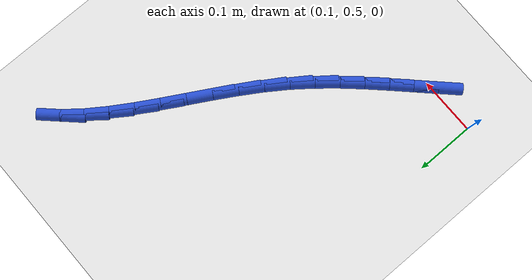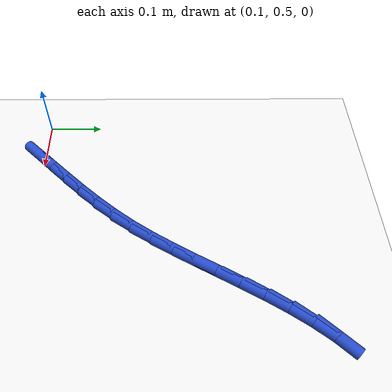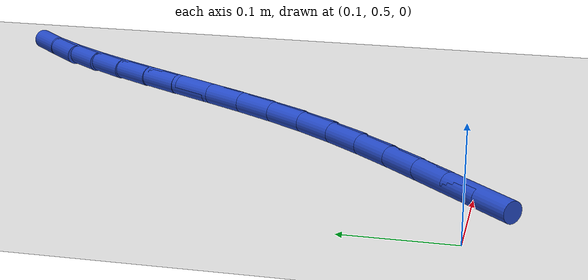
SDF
<sdf version="1.6">
 <world name="default">
  <model name="ground_plane">
   <static>1</static>
   <link name="link">
    <collision name="collision">
     <geometry><plane><normal>0 0 1</normal><size>100 100</size></plane></geometry>
     <surface><friction><ode><mu>100</mu><mu2>50</mu2></ode></friction></surface>
    </collision>
    <visual name="visual">
     <cast_shadows>0</cast_shadows>
     <geometry><plane><normal>0 0 1</normal><size>100 100</size></plane></geometry>
     <material>
      <script><uri>file://media/materials/scripts/gazebo.material</uri><name>Gazebo/WhiteGlow</name></script>
     </material>
    </visual>
   </link>
  </model>
  <model name="line">
   <link name="link_14">
    <pose>0.1823022736909687 0.4934664710613719 0.01 0 1.57 0.800476850619655</pose>
    <collision name="collision">
     <geometry><cylinder><radius>0.01</radius><length>0.08</length></cylinder></geometry>
    </collision>
    <visual name="visual">
     <material>
      <script><name>Gazebo/Blue</name><uri>file://media/materials/scripts/gazebo.material</uri></script>
     </material>
     <geometry><cylinder><radius>0.01</radius><length>0.08</length></cylinder></geometry>
    </visual>
   </link>
   <link name="link_15">
    <pose>0.20979353229625253 0.521799551211867 0.01 0 1.57 0.7988150344108635</pose>
    <collision name="collision">
     <geometry><cylinder><radius>0.01</radius><length>0.08</length></cylinder></geometry>
    </collision>
    <visual name="visual">
     <material>
      <script><name>Gazebo/Blue</name><uri>file://media/materials/scripts/gazebo.material</uri></script>
     </material>
     <geometry><cylinder><radius>0.01</radius><length>0.08</length></cylinder></geometry>
    </visual>
   </link>
   <link name="link_16">
    <pose>0.23766250720871962 0.5504265710855382 0.01 0 1.57 0.8100570907721972</pose>
    <collision name="collision">
     <geometry><cylinder><radius>0.01</radius><length>0.08</length></cylinder></geometry>
    </collision>
    <visual name="visual">
     <material>
      <script><name>Gazebo/Blue</name><uri>file://media/materials/scripts/gazebo.material</uri></script>
     </material>
     <geometry><cylinder><radius>0.01</radius><length>0.08</length></cylinder></geometry>
    </visual>
   </link>
   <link name="link_17">
    <pose>0.2655060036113212 0.5796782589242607 0.01 0 1.57 0.8338186093596895</pose>
    <collision name="collision">
     <geometry><cylinder><radius>0.01</radius><length>0.08</length></cylinder></geometry>
    </collision>
    <visual name="visual">
     <material>
      <script><name>Gazebo/Blue</name><uri>file://media/materials/scripts/gazebo.material</uri></script>
     </material>
     <geometry><cylinder><radius>0.01</radius><length>0.08</length></cylinder></geometry>
    </visual>
   </link>
   <link name="link_18">
    <pose>0.29292082668700836 0.6098853429699098 0.01 0 1.57 0.869746077668454</pose>
    <collision name="collision">
     <geometry><cylinder><radius>0.01</radius><length>0.08</length></cylinder></geometry>
    </collision>
    <visual name="visual">
     <material>
      <script><name>Gazebo/Blue</name><uri>file://media/materials/scripts/gazebo.material</uri></script>
     </material>
     <geometry><cylinder><radius>0.01</radius><length>0.08</length></cylinder></geometry>
    </visual>
   </link>
   <link name="link_19">
    <pose>0.31950378161873233 0.6413785514643608 0.01 0 1.57 0.9174079820426917</pose>
    <collision name="collision">
     <geometry><cylinder><radius>0.01</radius><length>0.08</length></cylinder></geometry>
    </collision>
    <visual name="visual">
     <material>
      <script><name>Gazebo/Blue</name><uri>file://media/materials/scripts/gazebo.material</uri></script>
     </material>
     <geometry><cylinder><radius>0.01</radius><length>0.08</length></cylinder></geometry>
    </visual>
   </link>
   <link name="link_20">
    <pose>0.3448516752477059 0.6744886106825727 0.01 0 1.57 0.9713655664704544</pose>
    <collision name="collision">
     <geometry><cylinder><radius>0.01</radius><length>0.08</length></cylinder></geometry>
    </collision>
    <visual name="visual">
     <material>
      <script><name>Gazebo/Blue</name><uri>file://media/materials/scripts/gazebo.material</uri></script>
     </material>
     <geometry><cylinder><radius>0.01</radius><length>0.08</length></cylinder></geometry>
    </visual>
   </link>
   <link name="link_21">
    <pose>0.36869680018552614 0.7093855429359073 0.01 0 1.57 1.0137798763475485</pose>
    <collision name="collision">
     <geometry><cylinder><radius>0.01</radius><length>0.08</length></cylinder></geometry>
    </collision>
    <visual name="visual">
     <material>
      <script><name>Gazebo/Blue</name><uri>file://media/materials/scripts/gazebo.material</uri></script>
     </material>
     <geometry><cylinder><radius>0.01</radius><length>0.08</length></cylinder></geometry>
    </visual>
   </link>
   <link name="link_22">
    <pose>0.39127638939382337 0.745640444793188 0.01 0 1.57 1.0415218999347804</pose>
    <collision name="collision">
     <geometry><cylinder><radius>0.01</radius><length>0.08</length></cylinder></geometry>
    </collision>
    <visual name="visual">
     <material>
      <script><name>Gazebo/Blue</name><uri>file://media/materials/scripts/gazebo.material</uri></script>
     </material>
     <geometry><cylinder><radius>0.01</radius><length>0.08</length></cylinder></geometry>
    </visual>
   </link>
   <link name="link_23">
    <pose>0.4129452838079878 0.7826849142804755 0.01 0 1.57 1.055331672748383</pose>
    <collision name="collision">
     <geometry><cylinder><radius>0.01</radius><length>0.08</length></cylinder></geometry>
    </collision>
    <visual name="visual">
     <material>
      <script><name>Gazebo/Blue</name><uri>file://media/materials/scripts/gazebo.material</uri></script>
     </material>
     <geometry><cylinder><radius>0.01</radius><length>0.08</length></cylinder></geometry>
    </visual>
   </link>
   <link name="link_24">
    <pose>0.43405832436340974 0.81995054942383 0.01 0 1.57 1.0554195280509582</pose>
    <collision name="collision">
     <geometry><cylinder><radius>0.01</radius><length>0.08</length></cylinder></geometry>
    </collision>
    <visual name="visual">
     <material>
      <script><name>Gazebo/Blue</name><uri>file://media/materials/scripts/gazebo.material</uri></script>
     </material>
     <geometry><cylinder><radius>0.01</radius><length>0.08</length></cylinder></geometry>
    </visual>
   </link>
   <link name="link_25">
    <pose>0.454970351995479 0.8568689482493117 0.01 0 1.57 1.0413915050004514</pose>
    <collision name="collision">
     <geometry><cylinder><radius>0.01</radius><length>0.08</length></cylinder></geometry>
    </collision>
    <visual name="visual">
     <material>
      <script><name>Gazebo/Blue</name><uri>file://media/materials/scripts/gazebo.material</uri></script>
     </material>
     <geometry><cylinder><radius>0.01</radius><length>0.08</length></cylinder></geometry>
    </visual>
   </link>
   <link name="link_26">
    <pose>0.4760362076395862 0.8928717087829808 0.01 0 1.57 1.0121902530101687</pose>
    <collision name="collision">
     <geometry><cylinder><radius>0.01</radius><length>0.08</length></cylinder></geometry>
    </collision>
    <visual name="visual">
     <material>
      <script><name>Gazebo/Blue</name><uri>file://media/materials/scripts/gazebo.material</uri></script>
     </material>
     <geometry><cylinder><radius>0.01</radius><length>0.08</length></cylinder></geometry>
    </visual>
   </link>
   <link name="link_27">
    <pose>0.49761073223112107 0.9273904290508974 0.01 0 1.57 0.9660562318140632</pose>
    <collision name="collision">
     <geometry><cylinder><radius>0.01</radius><length>0.08</length></cylinder></geometry>
    </collision>
    <visual name="visual">
     <material>
      <script><name>Gazebo/Blue</name><uri>file://media/materials/scripts/gazebo.material</uri></script>
     </material>
     <geometry><cylinder><radius>0.01</radius><length>0.08</length></cylinder></geometry>
    </visual>
   </link>
   <link name="link_28">
    <pose>0.5200487667054741 0.959856707079122 0.01 0 1.57 0.9005654896153721</pose>
    <collision name="collision">
     <geometry><cylinder><radius>0.01</radius><length>0.08</length></cylinder></geometry>
    </collision>
    <visual name="visual">
     <material>
      <script><name>Gazebo/Blue</name><uri>file://media/materials/scripts/gazebo.material</uri></script>
     </material>
     <geometry><cylinder><radius>0.01</radius><length>0.08</length></cylinder></geometry>
    </visual>
   </link>
   <link name="link_29">
    <pose>0.5437051519980354 0.989702140893715 0.01 0 1.57 0.8128864591380504</pose>
    <collision name="collision">
     <geometry><cylinder><radius>0.01</radius><length>0.08</length></cylinder></geometry>
    </collision>
    <visual name="visual">
     <material>
      <script><name>Gazebo/Blue</name><uri>file://media/materials/scripts/gazebo.material</uri></script>
     </material>
     <geometry><cylinder><radius>0.01</radius><length>0.08</length></cylinder></geometry>
    </visual>
   </link>
  </model>
 </world>
</sdf>
